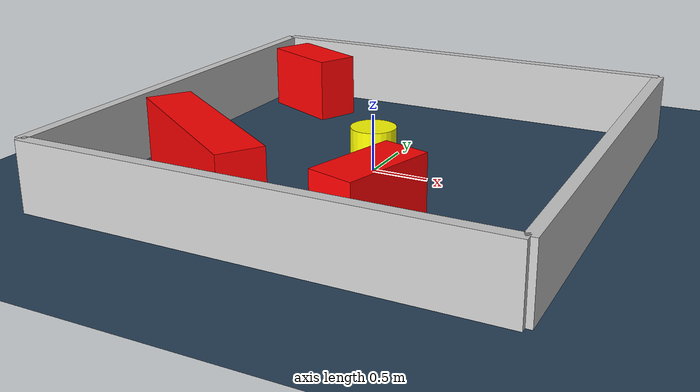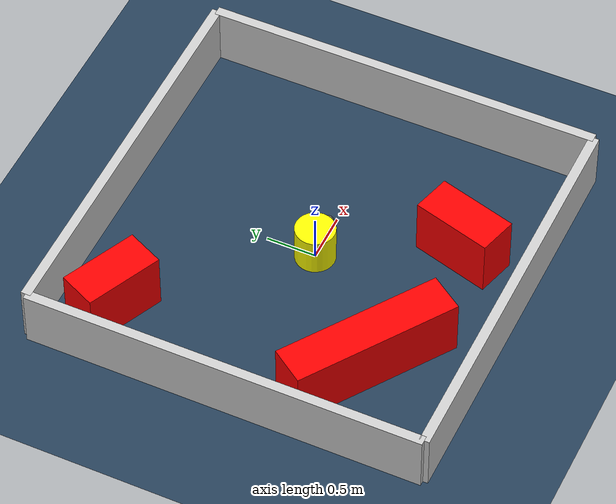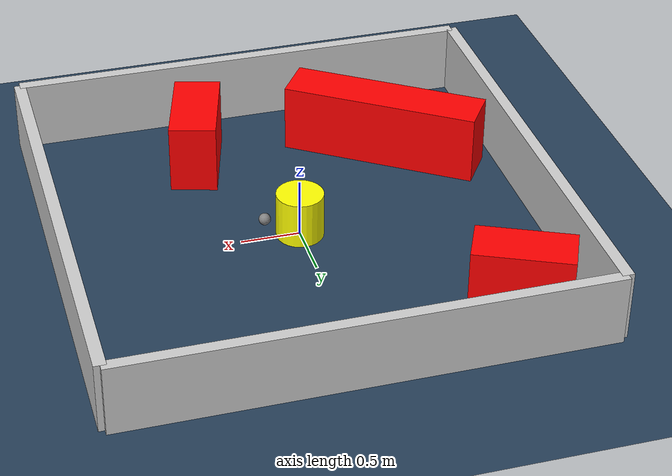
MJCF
<?xml version="1.0" ?>
<mujoco model="generated_environment">
  <option timestep="0.01" integrator="RK4" cone="elliptic"/>
  <default>
    <geom density="1"/>
  </default>
  <asset>
    <texture builtin="gradient" height="3072" rgb1="0.3 0.5 0.7" rgb2="0 0 0" type="skybox" width="512"/>
    <texture builtin="checker" height="300" mark="edge" markrgb="0.8 0.8 0.8" name="groundplane" rgb1="0.2 0.3 0.4" rgb2="0.1 0.2 0.3" type="2d" width="300"/>
    <material name="groundplane" reflectance="0.2" texrepeat="5 5" texture="groundplane" texuniform="true"/>
    <material name="robot" rgba="0.0 1.0 0.0 1"/>
  </asset>
  <worldbody>
    <light dir="0 0 -1" directional="true" pos="0 0 1.5"/>
    <geom condim="4" friction="1.0 0.005 0.001" material="groundplane" name="floor" size="0 0 0.05" type="plane"/>
    <body name="walls">
      <geom name="wall_1" condim="4" pos="-2.0 0.0 0.3" rgba="0.800000011920929 0.800000011920929 0.800000011920929 1.0" size="0.05 2.0 0.3" type="box"/>
      <geom name="wall_2" condim="4" pos="2.0 0.0 0.3" rgba="0.800000011920929 0.800000011920929 0.800000011920929 1.0" size="0.05 2.0 0.3" type="box"/>
      <geom name="wall_3" condim="4" pos="0.0 -2.0 0.3" rgba="0.800000011920929 0.800000011920929 0.800000011920929 1.0" size="2.0 0.05 0.3" type="box"/>
      <geom name="wall_4" condim="4" pos="0.0 2.0 0.3" rgba="0.800000011920929 0.800000011920929 0.800000011920929 1.0" size="2.0 0.05 0.3" type="box"/>
    </body>
    <body name="robot">
      <joint name="joint_x" type="slide" pos="0 0 0" axis="1 0 0"/>
      <joint name="joint_y" type="slide" pos="0 0 0" axis="0 1 0"/>
      <geom name="robot" type="sphere" pos="0.3 0.0 0.2" size="0.05" mass="5." friction="1.0 0.005 0.0001" condim="4" rgba="0.5 0.5 0.5 1.0"/>
      <site name="sensor_ball"/>
    </body>
    <body name="obstacle_movable_1">
      <geom name="obstacle_movable_1" condim="4" pos="0.0 0.0 0.2" euler="0 0 0.0" friction="1.0 0.005 0.001" rgba="1.0 1.0 0.0 1.0" size="0.2 0.2 0.0" type="cylinder" mass="0.1"/>
      <joint type="free"/>
    </body>
    <body name="obstacle_2_static">
      <geom name="obstacle_2_static" condim="4" pos="-1.0455801434251708 -1.0124069148255013 0.3" euler="0 0 145.5486790557936" friction="1.0 0.005 0.001" rgba="1 0 0 1" size="0.8536794568863493 0.2 0.3" type="box"/>
    </body>
    <body name="obstacle_3_static">
      <geom name="obstacle_3_static" condim="4" pos="0.5929502142190324 -1.2627625692045552 0.3" euler="0 0 254.13146079873542" friction="1.0 0.005 0.001" rgba="1 0 0 1" size="0.4076514266530492 0.2 0.3" type="box"/>
    </body>
    <body name="obstacle_4_static">
      <geom name="obstacle_4_static" condim="4" pos="-1.3963894311698848 1.4268428001387952 0.3" euler="0 0 155.15400108431638" friction="1.0 0.005 0.001" rgba="1 0 0 1" size="0.40429756463859784 0.2 0.3" type="box"/>
    </body>
  </worldbody>
  <actuator>
    <motor name="actuator_x" joint="joint_x" gear="1" ctrlrange="-1 1"/>
    <motor name="actuator_y" joint="joint_y" gear="1" ctrlrange="-1 1"/>
  </actuator>
</mujoco>
